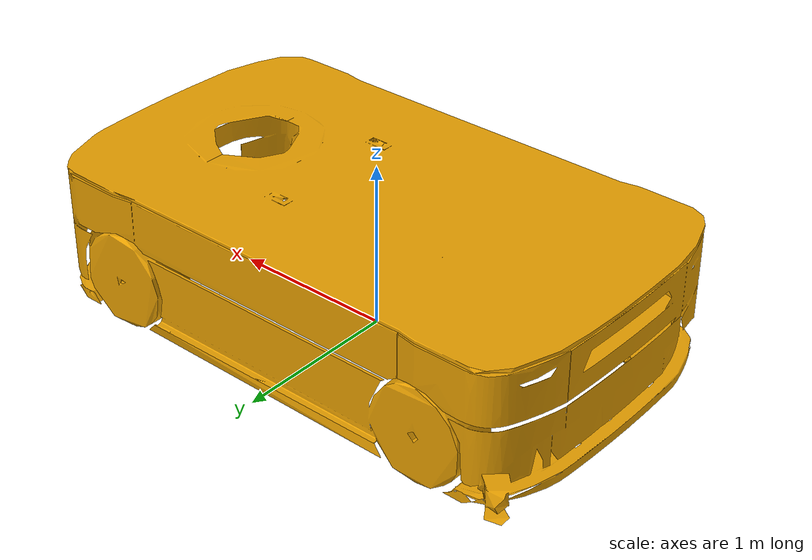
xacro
<?xml version="1.0" ?>

<robot name="omnimove" xmlns:xacro="http://wiki.ros.org/xacro">
  <xacro:include filename="$(find kuka_omnimove_e575_support)/urdf/omnimove.xacro"/>
  <xacro:omnimove prefix="omnimove_"/> <!-- need to make this a config parameter -->
  <xacro:omnimove_ros2_control name="omnimove"/>
</robot>

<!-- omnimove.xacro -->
<robot xmlns:xacro="http://wiki.ros.org/xacro" name="omnimove">
  <xacro:macro name="omnimove" params="prefix">
    prefix="${prefix}"
      <link name="${prefix}base">
        <visual>
          <origin xyz="0 0 0" rpy="0 0 0" />
          <geometry>
            <mesh filename="package://kuka_omnimove_e575_support/meshes/omnimove_simplified_2.dae" />
          </geometry>
        </visual>
        <collision>
          <origin xyz="0 0 0" rpy="0 0 0" />
          <geometry>
            <mesh filename="package://kuka_omnimove_e575_support/meshes/omnimove_simplified_2.stl" />
          </geometry>
        </collision>
      </link>
  </xacro:macro>
   <xacro:macro name="omnimove_ros2_control" params="name">
	    <ros2_control name="omnimove" type="system">
            <hardware>
                <plugin>omnimove::KukaUTV3HardwareInterface</plugin>
                <param name ="host">127.0.0.1</param>
                <param name="port">24000</param>
                <param name="agv_type">omnimove</param>
            </hardware>
	   </ros2_control>
  </xacro:macro>
</robot>
